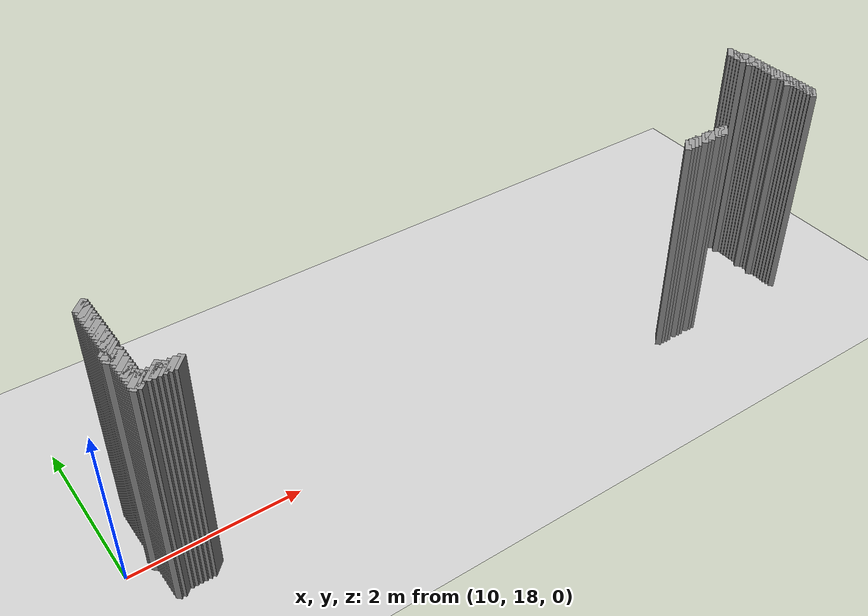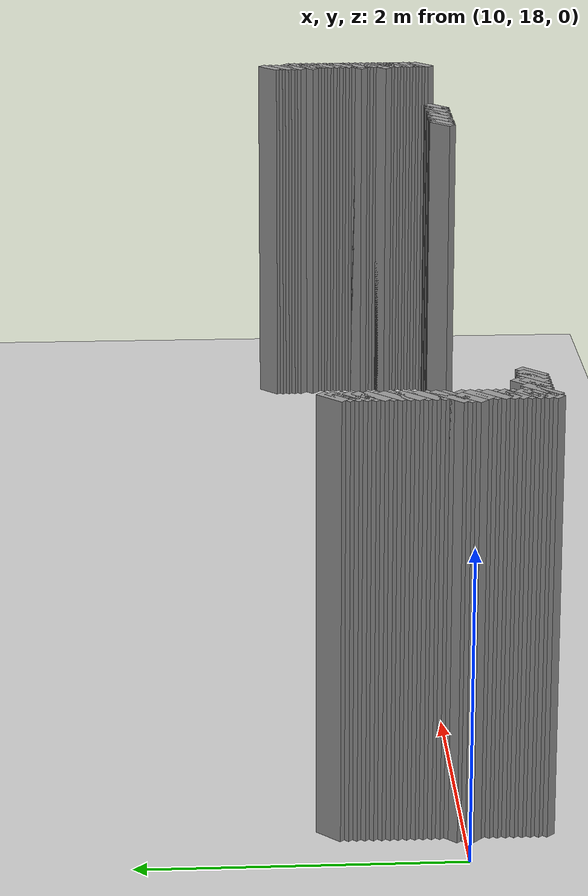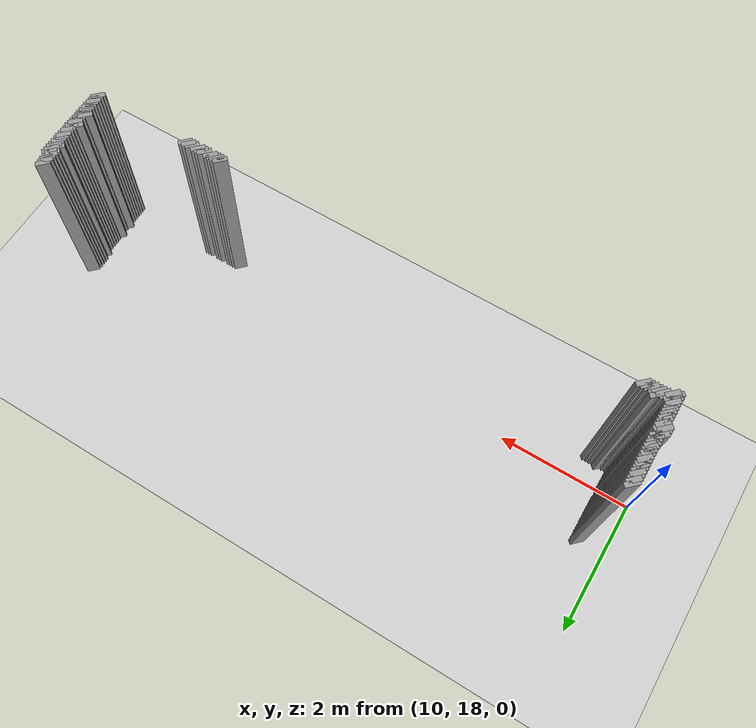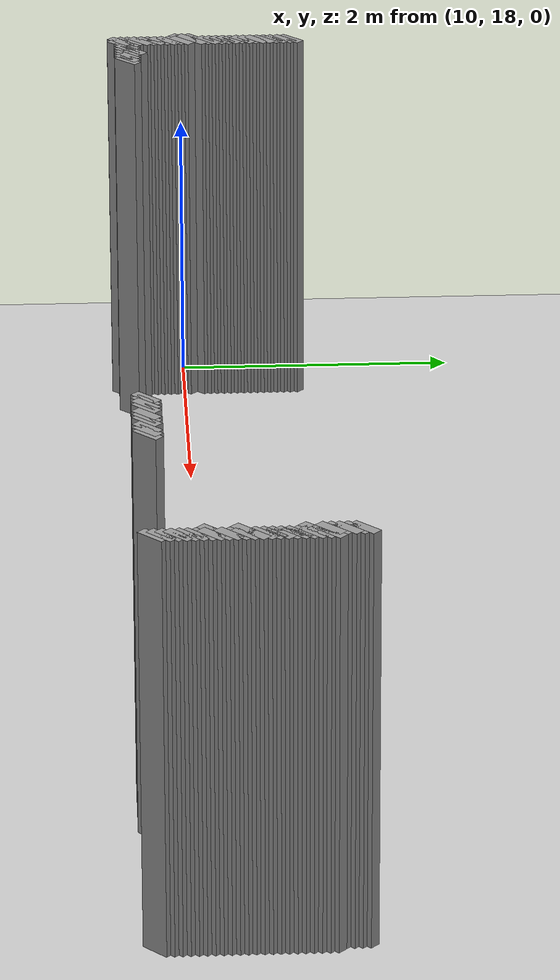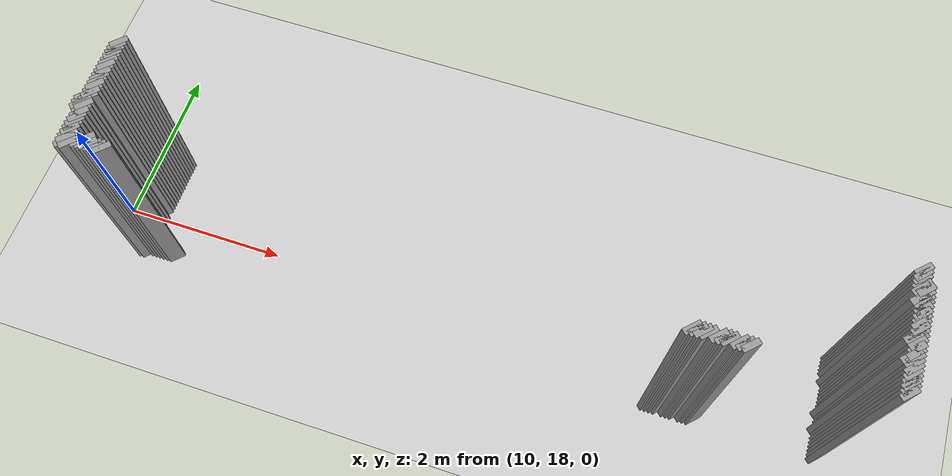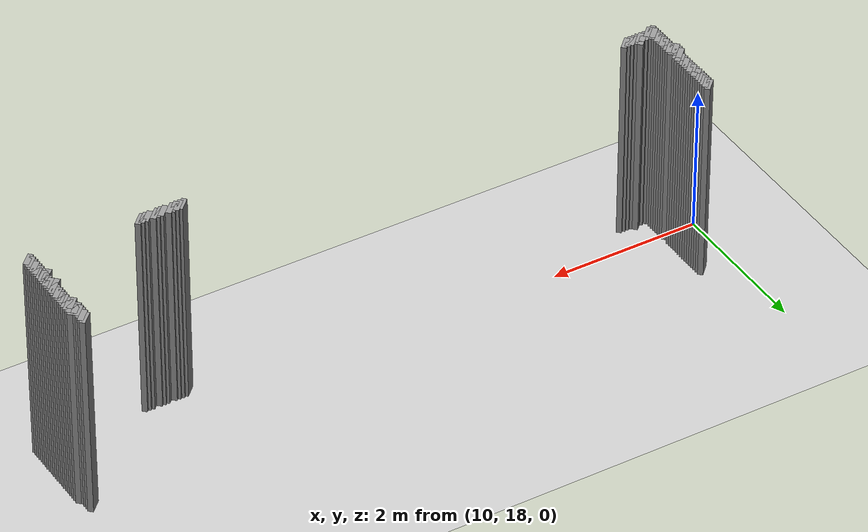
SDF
<sdf version="1.5">
 <world name="default">
  <include><uri>model://ground_plane</uri></include>
  <include><uri>model://sun</uri></include>
  <model name="grey_wall_234">
   <static>1</static>
   <link name="link">
    <pose>18.8 18.85  1.4 0 0 -0.785398163397</pose>
    <collision name="collision"><geometry><box><size>0.0707106781187 .2  2.8</size></box></geometry></collision>
    <visual name="visual">
     <cast_shadows>0</cast_shadows>
     <geometry><box><size>0.0707106781187 .2  2.8</size></box></geometry>
     <material>
      <script>
       <uri>model://grey_wall/materials/scripts</uri>
       <uri>model://grey_wall/materials/textures</uri>
       <name>vrc/grey_wall</name>
      </script>
     </material>
    </visual>
   </link>
  </model>
  <model name="grey_wall_235">
   <static>1</static>
   <link name="link">
    <pose>10.4 18.8  1.4 0 0 -0.785398163397</pose>
    <collision name="collision"><geometry><box><size>0.0707106781187 .2  2.8</size></box></geometry></collision>
    <visual name="visual">
     <cast_shadows>0</cast_shadows>
     <geometry><box><size>0.0707106781187 .2  2.8</size></box></geometry>
     <material>
      <script>
       <uri>model://grey_wall/materials/scripts</uri>
       <uri>model://grey_wall/materials/textures</uri>
       <name>vrc/grey_wall</name>
      </script>
     </material>
    </visual>
   </link>
  </model>
  <model name="grey_wall_236">
   <static>1</static>
   <link name="link">
    <pose>18.8 18.8  1.4 0 0 -0.785398163397</pose>
    <collision name="collision"><geometry><box><size>0.0707106781187 .2  2.8</size></box></geometry></collision>
    <visual name="visual">
     <cast_shadows>0</cast_shadows>
     <geometry><box><size>0.0707106781187 .2  2.8</size></box></geometry>
     <material>
      <script>
       <uri>model://grey_wall/materials/scripts</uri>
       <uri>model://grey_wall/materials/textures</uri>
       <name>vrc/grey_wall</name>
      </script>
     </material>
    </visual>
   </link>
  </model>
  <model name="grey_wall_237">
   <static>1</static>
   <link name="link">
    <pose>10.4 18.75  1.4 0 0 -0.785398163397</pose>
    <collision name="collision"><geometry><box><size>0.0707106781187 .2  2.8</size></box></geometry></collision>
    <visual name="visual">
     <cast_shadows>0</cast_shadows>
     <geometry><box><size>0.0707106781187 .2  2.8</size></box></geometry>
     <material>
      <script>
       <uri>model://grey_wall/materials/scripts</uri>
       <uri>model://grey_wall/materials/textures</uri>
       <name>vrc/grey_wall</name>
      </script>
     </material>
    </visual>
   </link>
  </model>
  <model name="grey_wall_238">
   <static>1</static>
   <link name="link">
    <pose>18.8 18.75  1.4 0 0 -0.785398163397</pose>
    <collision name="collision"><geometry><box><size>0.0707106781187 .2  2.8</size></box></geometry></collision>
    <visual name="visual">
     <cast_shadows>0</cast_shadows>
     <geometry><box><size>0.0707106781187 .2  2.8</size></box></geometry>
     <material>
      <script>
       <uri>model://grey_wall/materials/scripts</uri>
       <uri>model://grey_wall/materials/textures</uri>
       <name>vrc/grey_wall</name>
      </script>
     </material>
    </visual>
   </link>
  </model>
  <model name="grey_wall_239">
   <static>1</static>
   <link name="link">
    <pose>10.4 18.7  1.4 0 0 -0.785398163397</pose>
    <collision name="collision"><geometry><box><size>0.0707106781187 .2  2.8</size></box></geometry></collision>
    <visual name="visual">
     <cast_shadows>0</cast_shadows>
     <geometry><box><size>0.0707106781187 .2  2.8</size></box></geometry>
     <material>
      <script>
       <uri>model://grey_wall/materials/scripts</uri>
       <uri>model://grey_wall/materials/textures</uri>
       <name>vrc/grey_wall</name>
      </script>
     </material>
    </visual>
   </link>
  </model>
  <model name="grey_wall_240">
   <static>1</static>
   <link name="link">
    <pose>18.8 18.7  1.4 0 0 -0.785398163397</pose>
    <collision name="collision"><geometry><box><size>0.0707106781187 .2  2.8</size></box></geometry></collision>
    <visual name="visual">
     <cast_shadows>0</cast_shadows>
     <geometry><box><size>0.0707106781187 .2  2.8</size></box></geometry>
     <material>
      <script>
       <uri>model://grey_wall/materials/scripts</uri>
       <uri>model://grey_wall/materials/textures</uri>
       <name>vrc/grey_wall</name>
      </script>
     </material>
    </visual>
   </link>
  </model>
  <model name="grey_wall_241">
   <static>1</static>
   <link name="link">
    <pose>10.4 18.65  1.4 0 0 -0.785398163397</pose>
    <collision name="collision"><geometry><box><size>0.0707106781187 .2  2.8</size></box></geometry></collision>
    <visual name="visual">
     <cast_shadows>0</cast_shadows>
     <geometry><box><size>0.0707106781187 .2  2.8</size></box></geometry>
     <material>
      <script>
       <uri>model://grey_wall/materials/scripts</uri>
       <uri>model://grey_wall/materials/textures</uri>
       <name>vrc/grey_wall</name>
      </script>
     </material>
    </visual>
   </link>
  </model>
  <model name="grey_wall_242">
   <static>1</static>
   <link name="link">
    <pose>18.8 18.65  1.4 0 0 -0.785398163397</pose>
    <collision name="collision"><geometry><box><size>0.0707106781187 .2  2.8</size></box></geometry></collision>
    <visual name="visual">
     <cast_shadows>0</cast_shadows>
     <geometry><box><size>0.0707106781187 .2  2.8</size></box></geometry>
     <material>
      <script>
       <uri>model://grey_wall/materials/scripts</uri>
       <uri>model://grey_wall/materials/textures</uri>
       <name>vrc/grey_wall</name>
      </script>
     </material>
    </visual>
   </link>
  </model>
  <model name="grey_wall_243">
   <static>1</static>
   <link name="link">
    <pose>18.85 18.65  1.4 0 0 -0.785398163397</pose>
    <collision name="collision"><geometry><box><size>0.0707106781187 .2  2.8</size></box></geometry></collision>
    <visual name="visual">
     <cast_shadows>0</cast_shadows>
     <geometry><box><size>0.0707106781187 .2  2.8</size></box></geometry>
     <material>
      <script>
       <uri>model://grey_wall/materials/scripts</uri>
       <uri>model://grey_wall/materials/textures</uri>
       <name>vrc/grey_wall</name>
      </script>
     </material>
    </visual>
   </link>
  </model>
  <model name="grey_wall_244">
   <static>1</static>
   <link name="link">
    <pose>10.4 18.6  1.4 0 0 -0.785398163397</pose>
    <collision name="collision"><geometry><box><size>0.0707106781187 .2  2.8</size></box></geometry></collision>
    <visual name="visual">
     <cast_shadows>0</cast_shadows>
     <geometry><box><size>0.0707106781187 .2  2.8</size></box></geometry>
     <material>
      <script>
       <uri>model://grey_wall/materials/scripts</uri>
       <uri>model://grey_wall/materials/textures</uri>
       <name>vrc/grey_wall</name>
      </script>
     </material>
    </visual>
   </link>
  </model>
  <model name="grey_wall_245">
   <static>1</static>
   <link name="link">
    <pose>18.85 18.6  1.4 0 0 -0.785398163397</pose>
    <collision name="collision"><geometry><box><size>0.0707106781187 .2  2.8</size></box></geometry></collision>
    <visual name="visual">
     <cast_shadows>0</cast_shadows>
     <geometry><box><size>0.0707106781187 .2  2.8</size></box></geometry>
     <material>
      <script>
       <uri>model://grey_wall/materials/scripts</uri>
       <uri>model://grey_wall/materials/textures</uri>
       <name>vrc/grey_wall</name>
      </script>
     </material>
    </visual>
   </link>
  </model>
  <model name="grey_wall_246">
   <static>1</static>
   <link name="link">
    <pose>10.4 18.55  1.4 0 0 -0.785398163397</pose>
    <collision name="collision"><geometry><box><size>0.0707106781187 .2  2.8</size></box></geometry></collision>
    <visual name="visual">
     <cast_shadows>0</cast_shadows>
     <geometry><box><size>0.0707106781187 .2  2.8</size></box></geometry>
     <material>
      <script>
       <uri>model://grey_wall/materials/scripts</uri>
       <uri>model://grey_wall/materials/textures</uri>
       <name>vrc/grey_wall</name>
      </script>
     </material>
    </visual>
   </link>
  </model>
  <model name="grey_wall_247">
   <static>1</static>
   <link name="link">
    <pose>18.8 18.55  1.4 0 0 -0.785398163397</pose>
    <collision name="collision"><geometry><box><size>0.0707106781187 .2  2.8</size></box></geometry></collision>
    <visual name="visual">
     <cast_shadows>0</cast_shadows>
     <geometry><box><size>0.0707106781187 .2  2.8</size></box></geometry>
     <material>
      <script>
       <uri>model://grey_wall/materials/scripts</uri>
       <uri>model://grey_wall/materials/textures</uri>
       <name>vrc/grey_wall</name>
      </script>
     </material>
    </visual>
   </link>
  </model>
  <model name="grey_wall_248">
   <static>1</static>
   <link name="link">
    <pose>18.85 18.55  1.4 0 0 -0.785398163397</pose>
    <collision name="collision"><geometry><box><size>0.0707106781187 .2  2.8</size></box></geometry></collision>
    <visual name="visual">
     <cast_shadows>0</cast_shadows>
     <geometry><box><size>0.0707106781187 .2  2.8</size></box></geometry>
     <material>
      <script>
       <uri>model://grey_wall/materials/scripts</uri>
       <uri>model://grey_wall/materials/textures</uri>
       <name>vrc/grey_wall</name>
      </script>
     </material>
    </visual>
   </link>
  </model>
  <model name="grey_wall_249">
   <static>1</static>
   <link name="link">
    <pose>10.4 18.5  1.4 0 0 -0.785398163397</pose>
    <collision name="collision"><geometry><box><size>0.0707106781187 .2  2.8</size></box></geometry></collision>
    <visual name="visual">
     <cast_shadows>0</cast_shadows>
     <geometry><box><size>0.0707106781187 .2  2.8</size></box></geometry>
     <material>
      <script>
       <uri>model://grey_wall/materials/scripts</uri>
       <uri>model://grey_wall/materials/textures</uri>
       <name>vrc/grey_wall</name>
      </script>
     </material>
    </visual>
   </link>
  </model>
  <model name="grey_wall_250">
   <static>1</static>
   <link name="link">
    <pose>18.85 18.5  1.4 0 0 -0.785398163397</pose>
    <collision name="collision"><geometry><box><size>0.0707106781187 .2  2.8</size></box></geometry></collision>
    <visual name="visual">
     <cast_shadows>0</cast_shadows>
     <geometry><box><size>0.0707106781187 .2  2.8</size></box></geometry>
     <material>
      <script>
       <uri>model://grey_wall/materials/scripts</uri>
       <uri>model://grey_wall/materials/textures</uri>
       <name>vrc/grey_wall</name>
      </script>
     </material>
    </visual>
   </link>
  </model>
  <model name="grey_wall_251">
   <static>1</static>
   <link name="link">
    <pose>10.4 18.45  1.4 0 0 -0.785398163397</pose>
    <collision name="collision"><geometry><box><size>0.0707106781187 .2  2.8</size></box></geometry></collision>
    <visual name="visual">
     <cast_shadows>0</cast_shadows>
     <geometry><box><size>0.0707106781187 .2  2.8</size></box></geometry>
     <material>
      <script>
       <uri>model://grey_wall/materials/scripts</uri>
       <uri>model://grey_wall/materials/textures</uri>
       <name>vrc/grey_wall</name>
      </script>
     </material>
    </visual>
   </link>
  </model>
  <model name="grey_wall_252">
   <static>1</static>
   <link name="link">
    <pose>18.85 18.45  1.4 0 0 -0.785398163397</pose>
    <collision name="collision"><geometry><box><size>0.0707106781187 .2  2.8</size></box></geometry></collision>
    <visual name="visual">
     <cast_shadows>0</cast_shadows>
     <geometry><box><size>0.0707106781187 .2  2.8</size></box></geometry>
     <material>
      <script>
       <uri>model://grey_wall/materials/scripts</uri>
       <uri>model://grey_wall/materials/textures</uri>
       <name>vrc/grey_wall</name>
      </script>
     </material>
    </visual>
   </link>
  </model>
  <model name="grey_wall_253">
   <static>1</static>
   <link name="link">
    <pose>10.4 18.4  1.4 0 0 -0.785398163397</pose>
    <collision name="collision"><geometry><box><size>0.0707106781187 .2  2.8</size></box></geometry></collision>
    <visual name="visual">
     <cast_shadows>0</cast_shadows>
     <geometry><box><size>0.0707106781187 .2  2.8</size></box></geometry>
     <material>
      <script>
       <uri>model://grey_wall/materials/scripts</uri>
       <uri>model://grey_wall/materials/textures</uri>
       <name>vrc/grey_wall</name>
      </script>
     </material>
    </visual>
   </link>
  </model>
  <model name="grey_wall_254">
   <static>1</static>
   <link name="link">
    <pose>18.85 18.4  1.4 0 0 -0.785398163397</pose>
    <collision name="collision"><geometry><box><size>0.0707106781187 .2  2.8</size></box></geometry></collision>
    <visual name="visual">
     <cast_shadows>0</cast_shadows>
     <geometry><box><size>0.0707106781187 .2  2.8</size></box></geometry>
     <material>
      <script>
       <uri>model://grey_wall/materials/scripts</uri>
       <uri>model://grey_wall/materials/textures</uri>
       <name>vrc/grey_wall</name>
      </script>
     </material>
    </visual>
   </link>
  </model>
  <model name="grey_wall_255">
   <static>1</static>
   <link name="link">
    <pose>10.4 18.35  1.4 0 0 -0.785398163397</pose>
    <collision name="collision"><geometry><box><size>0.0707106781187 .2  2.8</size></box></geometry></collision>
    <visual name="visual">
     <cast_shadows>0</cast_shadows>
     <geometry><box><size>0.0707106781187 .2  2.8</size></box></geometry>
     <material>
      <script>
       <uri>model://grey_wall/materials/scripts</uri>
       <uri>model://grey_wall/materials/textures</uri>
       <name>vrc/grey_wall</name>
      </script>
     </material>
    </visual>
   </link>
  </model>
  <model name="grey_wall_256">
   <static>1</static>
   <link name="link">
    <pose>18.85 18.35  1.4 0 0 -0.785398163397</pose>
    <collision name="collision"><geometry><box><size>0.0707106781187 .2  2.8</size></box></geometry></collision>
    <visual name="visual">
     <cast_shadows>0</cast_shadows>
     <geometry><box><size>0.0707106781187 .2  2.8</size></box></geometry>
     <material>
      <script>
       <uri>model://grey_wall/materials/scripts</uri>
       <uri>model://grey_wall/materials/textures</uri>
       <name>vrc/grey_wall</name>
      </script>
     </material>
    </visual>
   </link>
  </model>
  <model name="grey_wall_257">
   <static>1</static>
   <link name="link">
    <pose>10.4 18.3  1.4 0 0 -0.785398163397</pose>
    <collision name="collision"><geometry><box><size>0.0707106781187 .2  2.8</size></box></geometry></collision>
    <visual name="visual">
     <cast_shadows>0</cast_shadows>
     <geometry><box><size>0.0707106781187 .2  2.8</size></box></geometry>
     <material>
      <script>
       <uri>model://grey_wall/materials/scripts</uri>
       <uri>model://grey_wall/materials/textures</uri>
       <name>vrc/grey_wall</name>
      </script>
     </material>
    </visual>
   </link>
  </model>
  <model name="grey_wall_258">
   <static>1</static>
   <link name="link">
    <pose>18.85 18.3  1.4 0 0 -0.785398163397</pose>
    <collision name="collision"><geometry><box><size>0.0707106781187 .2  2.8</size></box></geometry></collision>
    <visual name="visual">
     <cast_shadows>0</cast_shadows>
     <geometry><box><size>0.0707106781187 .2  2.8</size></box></geometry>
     <material>
      <script>
       <uri>model://grey_wall/materials/scripts</uri>
       <uri>model://grey_wall/materials/textures</uri>
       <name>vrc/grey_wall</name>
      </script>
     </material>
    </visual>
   </link>
  </model>
  <model name="grey_wall_259">
   <static>1</static>
   <link name="link">
    <pose>10.4 18.25  1.4 0 0 -0.785398163397</pose>
    <collision name="collision"><geometry><box><size>0.0707106781187 .2  2.8</size></box></geometry></collision>
    <visual name="visual">
     <cast_shadows>0</cast_shadows>
     <geometry><box><size>0.0707106781187 .2  2.8</size></box></geometry>
     <material>
      <script>
       <uri>model://grey_wall/materials/scripts</uri>
       <uri>model://grey_wall/materials/textures</uri>
       <name>vrc/grey_wall</name>
      </script>
     </material>
    </visual>
   </link>
  </model>
  <model name="grey_wall_260">
   <static>1</static>
   <link name="link">
    <pose>18.85 18.25  1.4 0 0 -0.785398163397</pose>
    <collision name="collision"><geometry><box><size>0.0707106781187 .2  2.8</size></box></geometry></collision>
    <visual name="visual">
     <cast_shadows>0</cast_shadows>
     <geometry><box><size>0.0707106781187 .2  2.8</size></box></geometry>
     <material>
      <script>
       <uri>model://grey_wall/materials/scripts</uri>
       <uri>model://grey_wall/materials/textures</uri>
       <name>vrc/grey_wall</name>
      </script>
     </material>
    </visual>
   </link>
  </model>
  <model name="grey_wall_261">
   <static>1</static>
   <link name="link">
    <pose>10.4 18.2  1.4 0 0 -0.785398163397</pose>
    <collision name="collision"><geometry><box><size>0.0707106781187 .2  2.8</size></box></geometry></collision>
    <visual name="visual">
     <cast_shadows>0</cast_shadows>
     <geometry><box><size>0.0707106781187 .2  2.8</size></box></geometry>
     <material>
      <script>
       <uri>model://grey_wall/materials/scripts</uri>
       <uri>model://grey_wall/materials/textures</uri>
       <name>vrc/grey_wall</name>
      </script>
     </material>
    </visual>
   </link>
  </model>
  <model name="grey_wall_262">
   <static>1</static>
   <link name="link">
    <pose>18.85 18.2  1.4 0 0 -0.785398163397</pose>
    <collision name="collision"><geometry><box><size>0.0707106781187 .2  2.8</size></box></geometry></collision>
    <visual name="visual">
     <cast_shadows>0</cast_shadows>
     <geometry><box><size>0.0707106781187 .2  2.8</size></box></geometry>
     <material>
      <script>
       <uri>model://grey_wall/materials/scripts</uri>
       <uri>model://grey_wall/materials/textures</uri>
       <name>vrc/grey_wall</name>
      </script>
     </material>
    </visual>
   </link>
  </model>
  <model name="grey_wall_263">
   <static>1</static>
   <link name="link">
    <pose>10.4 18.15  1.4 0 0 -0.785398163397</pose>
    <collision name="collision"><geometry><box><size>0.0707106781187 .2  2.8</size></box></geometry></collision>
    <visual name="visual">
     <cast_shadows>0</cast_shadows>
     <geometry><box><size>0.0707106781187 .2  2.8</size></box></geometry>
     <material>
      <script>
       <uri>model://grey_wall/materials/scripts</uri>
       <uri>model://grey_wall/materials/textures</uri>
       <name>vrc/grey_wall</name>
      </script>
     </material>
    </visual>
   </link>
  </model>
  <model name="grey_wall_264">
   <static>1</static>
   <link name="link">
    <pose>18.8 18.15  1.4 0 0 -0.785398163397</pose>
    <collision name="collision"><geometry><box><size>0.0707106781187 .2  2.8</size></box></geometry></collision>
    <visual name="visual">
     <cast_shadows>0</cast_shadows>
     <geometry><box><size>0.0707106781187 .2  2.8</size></box></geometry>
     <material>
      <script>
       <uri>model://grey_wall/materials/scripts</uri>
       <uri>model://grey_wall/materials/textures</uri>
       <name>vrc/grey_wall</name>
      </script>
     </material>
    </visual>
   </link>
  </model>
  <model name="grey_wall_265">
   <static>1</static>
   <link name="link">
    <pose>18.85 18.15  1.4 0 0 -0.785398163397</pose>
    <collision name="collision"><geometry><box><size>0.0707106781187 .2  2.8</size></box></geometry></collision>
    <visual name="visual">
     <cast_shadows>0</cast_shadows>
     <geometry><box><size>0.0707106781187 .2  2.8</size></box></geometry>
     <material>
      <script>
       <uri>model://grey_wall/materials/scripts</uri>
       <uri>model://grey_wall/materials/textures</uri>
       <name>vrc/grey_wall</name>
      </script>
     </material>
    </visual>
   </link>
  </model>
  <model name="grey_wall_266">
   <static>1</static>
   <link name="link">
    <pose>10.35 18.1  1.4 0 0 -0.785398163397</pose>
    <collision name="collision"><geometry><box><size>0.0707106781187 .2  2.8</size></box></geometry></collision>
    <visual name="visual">
     <cast_shadows>0</cast_shadows>
     <geometry><box><size>0.0707106781187 .2  2.8</size></box></geometry>
     <material>
      <script>
       <uri>model://grey_wall/materials/scripts</uri>
       <uri>model://grey_wall/materials/textures</uri>
       <name>vrc/grey_wall</name>
      </script>
     </material>
    </visual>
   </link>
  </model>
  <model name="grey_wall_267">
   <static>1</static>
   <link name="link">
    <pose>10.4 18.1  1.4 0 0 -0.785398163397</pose>
    <collision name="collision"><geometry><box><size>0.0707106781187 .2  2.8</size></box></geometry></collision>
    <visual name="visual">
     <cast_shadows>0</cast_shadows>
     <geometry><box><size>0.0707106781187 .2  2.8</size></box></geometry>
     <material>
      <script>
       <uri>model://grey_wall/materials/scripts</uri>
       <uri>model://grey_wall/materials/textures</uri>
       <name>vrc/grey_wall</name>
      </script>
     </material>
    </visual>
   </link>
  </model>
  <model name="grey_wall_268">
   <static>1</static>
   <link name="link">
    <pose>18.85 18.1  1.4 0 0 -0.785398163397</pose>
    <collision name="collision"><geometry><box><size>0.0707106781187 .2  2.8</size></box></geometry></collision>
    <visual name="visual">
     <cast_shadows>0</cast_shadows>
     <geometry><box><size>0.0707106781187 .2  2.8</size></box></geometry>
     <material>
      <script>
       <uri>model://grey_wall/materials/scripts</uri>
       <uri>model://grey_wall/materials/textures</uri>
       <name>vrc/grey_wall</name>
      </script>
     </material>
    </visual>
   </link>
  </model>
  <model name="grey_wall_269">
   <static>1</static>
   <link name="link">
    <pose>10.35 18.05  1.4 0 0 -0.785398163397</pose>
    <collision name="collision"><geometry><box><size>0.0707106781187 .2  2.8</size></box></geometry></collision>
    <visual name="visual">
     <cast_shadows>0</cast_shadows>
     <geometry><box><size>0.0707106781187 .2  2.8</size></box></geometry>
     <material>
      <script>
       <uri>model://grey_wall/materials/scripts</uri>
       <uri>model://grey_wall/materials/textures</uri>
       <name>vrc/grey_wall</name>
      </script>
     </material>
    </visual>
   </link>
  </model>
  <model name="grey_wall_270">
   <static>1</static>
   <link name="link">
    <pose>18.85 18.05  1.4 0 0 -0.785398163397</pose>
    <collision name="collision"><geometry><box><size>0.0707106781187 .2  2.8</size></box></geometry></collision>
    <visual name="visual">
     <cast_shadows>0</cast_shadows>
     <geometry><box><size>0.0707106781187 .2  2.8</size></box></geometry>
     <material>
      <script>
       <uri>model://grey_wall/materials/scripts</uri>
       <uri>model://grey_wall/materials/textures</uri>
       <name>vrc/grey_wall</name>
      </script>
     </material>
    </visual>
   </link>
  </model>
  <model name="grey_wall_271">
   <static>1</static>
   <link name="link">
    <pose>10.35 18.0  1.4 0 0 -0.785398163397</pose>
    <collision name="collision"><geometry><box><size>0.0707106781187 .2  2.8</size></box></geometry></collision>
    <visual name="visual">
     <cast_shadows>0</cast_shadows>
     <geometry><box><size>0.0707106781187 .2  2.8</size></box></geometry>
     <material>
      <script>
       <uri>model://grey_wall/materials/scripts</uri>
       <uri>model://grey_wall/materials/textures</uri>
       <name>vrc/grey_wall</name>
      </script>
     </material>
    </visual>
   </link>
  </model>
  <model name="grey_wall_272">
   <static>1</static>
   <link name="link">
    <pose>10.4 18.0  1.4 0 0 -0.785398163397</pose>
    <collision name="collision"><geometry><box><size>0.0707106781187 .2  2.8</size></box></geometry></collision>
    <visual name="visual">
     <cast_shadows>0</cast_shadows>
     <geometry><box><size>0.0707106781187 .2  2.8</size></box></geometry>
     <material>
      <script>
       <uri>model://grey_wall/materials/scripts</uri>
       <uri>model://grey_wall/materials/textures</uri>
       <name>vrc/grey_wall</name>
      </script>
     </material>
    </visual>
   </link>
  </model>
  <model name="grey_wall_273">
   <static>1</static>
   <link name="link">
    <pose>18.85 18.0  1.4 0 0 -0.785398163397</pose>
    <collision name="collision"><geometry><box><size>0.0707106781187 .2  2.8</size></box></geometry></collision>
    <visual name="visual">
     <cast_shadows>0</cast_shadows>
     <geometry><box><size>0.0707106781187 .2  2.8</size></box></geometry>
     <material>
      <script>
       <uri>model://grey_wall/materials/scripts</uri>
       <uri>model://grey_wall/materials/textures</uri>
       <name>vrc/grey_wall</name>
      </script>
     </material>
    </visual>
   </link>
  </model>
  <model name="grey_wall_274">
   <static>1</static>
   <link name="link">
    <pose>10.4 17.95  1.4 0 0 -0.785398163397</pose>
    <collision name="collision"><geometry><box><size>0.0707106781187 .2  2.8</size></box></geometry></collision>
    <visual name="visual">
     <cast_shadows>0</cast_shadows>
     <geometry><box><size>0.0707106781187 .2  2.8</size></box></geometry>
     <material>
      <script>
       <uri>model://grey_wall/materials/scripts</uri>
       <uri>model://grey_wall/materials/textures</uri>
       <name>vrc/grey_wall</name>
      </script>
     </material>
    </visual>
   </link>
  </model>
  <model name="grey_wall_275">
   <static>1</static>
   <link name="link">
    <pose>18.8 17.95  1.4 0 0 -0.785398163397</pose>
    <collision name="collision"><geometry><box><size>0.0707106781187 .2  2.8</size></box></geometry></collision>
    <visual name="visual">
     <cast_shadows>0</cast_shadows>
     <geometry><box><size>0.0707106781187 .2  2.8</size></box></geometry>
     <material>
      <script>
       <uri>model://grey_wall/materials/scripts</uri>
       <uri>model://grey_wall/materials/textures</uri>
       <name>vrc/grey_wall</name>
      </script>
     </material>
    </visual>
   </link>
  </model>
  <model name="grey_wall_276">
   <static>1</static>
   <link name="link">
    <pose>18.85 17.95  1.4 0 0 -0.785398163397</pose>
    <collision name="collision"><geometry><box><size>0.0707106781187 .2  2.8</size></box></geometry></collision>
    <visual name="visual">
     <cast_shadows>0</cast_shadows>
     <geometry><box><size>0.0707106781187 .2  2.8</size></box></geometry>
     <material>
      <script>
       <uri>model://grey_wall/materials/scripts</uri>
       <uri>model://grey_wall/materials/textures</uri>
       <name>vrc/grey_wall</name>
      </script>
     </material>
    </visual>
   </link>
  </model>
  <model name="grey_wall_277">
   <static>1</static>
   <link name="link">
    <pose>10.4 17.9  1.4 0 0 -0.785398163397</pose>
    <collision name="collision"><geometry><box><size>0.0707106781187 .2  2.8</size></box></geometry></collision>
    <visual name="visual">
     <cast_shadows>0</cast_shadows>
     <geometry><box><size>0.0707106781187 .2  2.8</size></box></geometry>
     <material>
      <script>
       <uri>model://grey_wall/materials/scripts</uri>
       <uri>model://grey_wall/materials/textures</uri>
       <name>vrc/grey_wall</name>
      </script>
     </material>
    </visual>
   </link>
  </model>
  <model name="grey_wall_278">
   <static>1</static>
   <link name="link">
    <pose>18.85 17.9  1.4 0 0 -0.785398163397</pose>
    <collision name="collision"><geometry><box><size>0.0707106781187 .2  2.8</size></box></geometry></collision>
    <visual name="visual">
     <cast_shadows>0</cast_shadows>
     <geometry><box><size>0.0707106781187 .2  2.8</size></box></geometry>
     <material>
      <script>
       <uri>model://grey_wall/materials/scripts</uri>
       <uri>model://grey_wall/materials/textures</uri>
       <name>vrc/grey_wall</name>
      </script>
     </material>
    </visual>
   </link>
  </model>
  <model name="grey_wall_279">
   <static>1</static>
   <link name="link">
    <pose>10.4 17.85  1.4 0 0 -0.785398163397</pose>
    <collision name="collision"><geometry><box><size>0.0707106781187 .2  2.8</size></box></geometry></collision>
    <visual name="visual">
     <cast_shadows>0</cast_shadows>
     <geometry><box><size>0.0707106781187 .2  2.8</size></box></geometry>
     <material>
      <script>
       <uri>model://grey_wall/materials/scripts</uri>
       <uri>model://grey_wall/materials/textures</uri>
       <name>vrc/grey_wall</name>
      </script>
     </material>
    </visual>
   </link>
  </model>
  <model name="grey_wall_280">
   <static>1</static>
   <link name="link">
    <pose>18.85 17.85  1.4 0 0 -0.785398163397</pose>
    <collision name="collision"><geometry><box><size>0.0707106781187 .2  2.8</size></box></geometry></collision>
    <visual name="visual">
     <cast_shadows>0</cast_shadows>
     <geometry><box><size>0.0707106781187 .2  2.8</size></box></geometry>
     <material>
      <script>
       <uri>model://grey_wall/materials/scripts</uri>
       <uri>model://grey_wall/materials/textures</uri>
       <name>vrc/grey_wall</name>
      </script>
     </material>
    </visual>
   </link>
  </model>
  <model name="grey_wall_281">
   <static>1</static>
   <link name="link">
    <pose>10.4 17.8  1.4 0 0 -0.785398163397</pose>
    <collision name="collision"><geometry><box><size>0.0707106781187 .2  2.8</size></box></geometry></collision>
    <visual name="visual">
     <cast_shadows>0</cast_shadows>
     <geometry><box><size>0.0707106781187 .2  2.8</size></box></geometry>
     <material>
      <script>
       <uri>model://grey_wall/materials/scripts</uri>
       <uri>model://grey_wall/materials/textures</uri>
       <name>vrc/grey_wall</name>
      </script>
     </material>
    </visual>
   </link>
  </model>
  <model name="grey_wall_282">
   <static>1</static>
   <link name="link">
    <pose>18.85 17.8  1.4 0 0 -0.785398163397</pose>
    <collision name="collision"><geometry><box><size>0.0707106781187 .2  2.8</size></box></geometry></collision>
    <visual name="visual">
     <cast_shadows>0</cast_shadows>
     <geometry><box><size>0.0707106781187 .2  2.8</size></box></geometry>
     <material>
      <script>
       <uri>model://grey_wall/materials/scripts</uri>
       <uri>model://grey_wall/materials/textures</uri>
       <name>vrc/grey_wall</name>
      </script>
     </material>
    </visual>
   </link>
  </model>
  <model name="grey_wall_283">
   <static>1</static>
   <link name="link">
    <pose>10.4 17.75  1.4 0 0 -0.785398163397</pose>
    <collision name="collision"><geometry><box><size>0.0707106781187 .2  2.8</size></box></geometry></collision>
    <visual name="visual">
     <cast_shadows>0</cast_shadows>
     <geometry><box><size>0.0707106781187 .2  2.8</size></box></geometry>
     <material>
      <script>
       <uri>model://grey_wall/materials/scripts</uri>
       <uri>model://grey_wall/materials/textures</uri>
       <name>vrc/grey_wall</name>
      </script>
     </material>
    </visual>
   </link>
  </model>
  <model name="grey_wall_284">
   <static>1</static>
   <link name="link">
    <pose>18.85 17.75  1.4 0 0 -0.785398163397</pose>
    <collision name="collision"><geometry><box><size>0.0707106781187 .2  2.8</size></box></geometry></collision>
    <visual name="visual">
     <cast_shadows>0</cast_shadows>
     <geometry><box><size>0.0707106781187 .2  2.8</size></box></geometry>
     <material>
      <script>
       <uri>model://grey_wall/materials/scripts</uri>
       <uri>model://grey_wall/materials/textures</uri>
       <name>vrc/grey_wall</name>
      </script>
     </material>
    </visual>
   </link>
  </model>
  <model name="grey_wall_285">
   <static>1</static>
   <link name="link">
    <pose>10.4 17.7  1.4 0 0 -0.785398163397</pose>
    <collision name="collision"><geometry><box><size>0.0707106781187 .2  2.8</size></box></geometry></collision>
    <visual name="visual">
     <cast_shadows>0</cast_shadows>
     <geometry><box><size>0.0707106781187 .2  2.8</size></box></geometry>
     <material>
      <script>
       <uri>model://grey_wall/materials/scripts</uri>
       <uri>model://grey_wall/materials/textures</uri>
       <name>vrc/grey_wall</name>
      </script>
     </material>
    </visual>
   </link>
  </model>
  <model name="grey_wall_286">
   <static>1</static>
   <link name="link">
    <pose>18.85 17.7  1.4 0 0 -0.785398163397</pose>
    <collision name="collision"><geometry><box><size>0.0707106781187 .2  2.8</size></box></geometry></collision>
    <visual name="visual">
     <cast_shadows>0</cast_shadows>
     <geometry><box><size>0.0707106781187 .2  2.8</size></box></geometry>
     <material>
      <script>
       <uri>model://grey_wall/materials/scripts</uri>
       <uri>model://grey_wall/materials/textures</uri>
       <name>vrc/grey_wall</name>
      </script>
     </material>
    </visual>
   </link>
  </model>
  <model name="grey_wall_287">
   <static>1</static>
   <link name="link">
    <pose>10.4 17.65  1.4 0 0 -0.785398163397</pose>
    <collision name="collision"><geometry><box><size>0.0707106781187 .2  2.8</size></box></geometry></collision>
    <visual name="visual">
     <cast_shadows>0</cast_shadows>
     <geometry><box><size>0.0707106781187 .2  2.8</size></box></geometry>
     <material>
      <script>
       <uri>model://grey_wall/materials/scripts</uri>
       <uri>model://grey_wall/materials/textures</uri>
       <name>vrc/grey_wall</name>
      </script>
     </material>
    </visual>
   </link>
  </model>
  <model name="grey_wall_288">
   <static>1</static>
   <link name="link">
    <pose>10.6 17.65  1.4 0 0 -0.785398163397</pose>
    <collision name="collision"><geometry><box><size>0.0707106781187 .2  2.8</size></box></geometry></collision>
    <visual name="visual">
     <cast_shadows>0</cast_shadows>
     <geometry><box><size>0.0707106781187 .2  2.8</size></box></geometry>
     <material>
      <script>
       <uri>model://grey_wall/materials/scripts</uri>
       <uri>model://grey_wall/materials/textures</uri>
       <name>vrc/grey_wall</name>
      </script>
     </material>
    </visual>
   </link>
  </model>
  <model name="grey_wall_289">
   <static>1</static>
   <link name="link">
    <pose>18.85 17.65  1.4 0 0 -0.785398163397</pose>
    <collision name="collision"><geometry><box><size>0.0707106781187 .2  2.8</size></box></geometry></collision>
    <visual name="visual">
     <cast_shadows>0</cast_shadows>
     <geometry><box><size>0.0707106781187 .2  2.8</size></box></geometry>
     <material>
      <script>
       <uri>model://grey_wall/materials/scripts</uri>
       <uri>model://grey_wall/materials/textures</uri>
       <name>vrc/grey_wall</name>
      </script>
     </material>
    </visual>
   </link>
  </model>
  <model name="grey_wall_290">
   <static>1</static>
   <link name="link">
    <pose>10.4 17.6  1.4 0 0 -0.785398163397</pose>
    <collision name="collision"><geometry><box><size>0.0707106781187 .2  2.8</size></box></geometry></collision>
    <visual name="visual">
     <cast_shadows>0</cast_shadows>
     <geometry><box><size>0.0707106781187 .2  2.8</size></box></geometry>
     <material>
      <script>
       <uri>model://grey_wall/materials/scripts</uri>
       <uri>model://grey_wall/materials/textures</uri>
       <name>vrc/grey_wall</name>
      </script>
     </material>
    </visual>
   </link>
  </model>
  <model name="grey_wall_291">
   <static>1</static>
   <link name="link">
    <pose>10.45 17.6  1.4 0 0 -0.785398163397</pose>
    <collision name="collision"><geometry><box><size>0.0707106781187 .2  2.8</size></box></geometry></collision>
    <visual name="visual">
     <cast_shadows>0</cast_shadows>
     <geometry><box><size>0.0707106781187 .2  2.8</size></box></geometry>
     <material>
      <script>
       <uri>model://grey_wall/materials/scripts</uri>
       <uri>model://grey_wall/materials/textures</uri>
       <name>vrc/grey_wall</name>
      </script>
     </material>
    </visual>
   </link>
  </model>
  <model name="grey_wall_292">
   <static>1</static>
   <link name="link">
    <pose>10.5 17.6  1.4 0 0 -0.785398163397</pose>
    <collision name="collision"><geometry><box><size>0.0707106781187 .2  2.8</size></box></geometry></collision>
    <visual name="visual">
     <cast_shadows>0</cast_shadows>
     <geometry><box><size>0.0707106781187 .2  2.8</size></box></geometry>
     <material>
      <script>
       <uri>model://grey_wall/materials/scripts</uri>
       <uri>model://grey_wall/materials/textures</uri>
       <name>vrc/grey_wall</name>
      </script>
     </material>
    </visual>
   </link>
  </model>
  <model name="grey_wall_293">
   <static>1</static>
   <link name="link">
    <pose>10.55 17.6  1.4 0 0 -0.785398163397</pose>
    <collision name="collision"><geometry><box><size>0.0707106781187 .2  2.8</size></box></geometry></collision>
    <visual name="visual">
     <cast_shadows>0</cast_shadows>
     <geometry><box><size>0.0707106781187 .2  2.8</size></box></geometry>
     <material>
      <script>
       <uri>model://grey_wall/materials/scripts</uri>
       <uri>model://grey_wall/materials/textures</uri>
       <name>vrc/grey_wall</name>
      </script>
     </material>
    </visual>
   </link>
  </model>
  <model name="grey_wall_294">
   <static>1</static>
   <link name="link">
    <pose>10.6 17.6  1.4 0 0 -0.785398163397</pose>
    <collision name="collision"><geometry><box><size>0.0707106781187 .2  2.8</size></box></geometry></collision>
    <visual name="visual">
     <cast_shadows>0</cast_shadows>
     <geometry><box><size>0.0707106781187 .2  2.8</size></box></geometry>
     <material>
      <script>
       <uri>model://grey_wall/materials/scripts</uri>
       <uri>model://grey_wall/materials/textures</uri>
       <name>vrc/grey_wall</name>
      </script>
     </material>
    </visual>
   </link>
  </model>
  <model name="grey_wall_295">
   <static>1</static>
   <link name="link">
    <pose>10.65 17.6  1.4 0 0 -0.785398163397</pose>
    <collision name="collision"><geometry><box><size>0.0707106781187 .2  2.8</size></box></geometry></collision>
    <visual name="visual">
     <cast_shadows>0</cast_shadows>
     <geometry><box><size>0.0707106781187 .2  2.8</size></box></geometry>
     <material>
      <script>
       <uri>model://grey_wall/materials/scripts</uri>
       <uri>model://grey_wall/materials/textures</uri>
       <name>vrc/grey_wall</name>
      </script>
     </material>
    </visual>
   </link>
  </model>
  <model name="grey_wall_296">
   <static>1</static>
   <link name="link">
    <pose>10.7 17.6  1.4 0 0 -0.785398163397</pose>
    <collision name="collision"><geometry><box><size>0.0707106781187 .2  2.8</size></box></geometry></collision>
    <visual name="visual">
     <cast_shadows>0</cast_shadows>
     <geometry><box><size>0.0707106781187 .2  2.8</size></box></geometry>
     <material>
      <script>
       <uri>model://grey_wall/materials/scripts</uri>
       <uri>model://grey_wall/materials/textures</uri>
       <name>vrc/grey_wall</name>
      </script>
     </material>
    </visual>
   </link>
  </model>
  <model name="grey_wall_297">
   <static>1</static>
   <link name="link">
    <pose>10.75 17.6  1.4 0 0 -0.785398163397</pose>
    <collision name="collision"><geometry><box><size>0.0707106781187 .2  2.8</size></box></geometry></collision>
    <visual name="visual">
     <cast_shadows>0</cast_shadows>
     <geometry><box><size>0.0707106781187 .2  2.8</size></box></geometry>
     <material>
      <script>
       <uri>model://grey_wall/materials/scripts</uri>
       <uri>model://grey_wall/materials/textures</uri>
       <name>vrc/grey_wall</name>
      </script>
     </material>
    </visual>
   </link>
  </model>
  <model name="grey_wall_298">
   <static>1</static>
   <link name="link">
    <pose>10.8 17.6  1.4 0 0 -0.785398163397</pose>
    <collision name="collision"><geometry><box><size>0.0707106781187 .2  2.8</size></box></geometry></collision>
    <visual name="visual">
     <cast_shadows>0</cast_shadows>
     <geometry><box><size>0.0707106781187 .2  2.8</size></box></geometry>
     <material>
      <script>
       <uri>model://grey_wall/materials/scripts</uri>
       <uri>model://grey_wall/materials/textures</uri>
       <name>vrc/grey_wall</name>
      </script>
     </material>
    </visual>
   </link>
  </model>
  <model name="grey_wall_299">
   <static>1</static>
   <link name="link">
    <pose>16.85 17.6  1.4 0 0 -0.785398163397</pose>
    <collision name="collision"><geometry><box><size>0.0707106781187 .2  2.8</size></box></geometry></collision>
    <visual name="visual">
     <cast_shadows>0</cast_shadows>
     <geometry><box><size>0.0707106781187 .2  2.8</size></box></geometry>
     <material>
      <script>
       <uri>model://grey_wall/materials/scripts</uri>
       <uri>model://grey_wall/materials/textures</uri>
       <name>vrc/grey_wall</name>
      </script>
     </material>
    </visual>
   </link>
  </model>
  <model name="grey_wall_300">
   <static>1</static>
   <link name="link">
    <pose>16.9 17.6  1.4 0 0 -0.785398163397</pose>
    <collision name="collision"><geometry><box><size>0.0707106781187 .2  2.8</size></box></geometry></collision>
    <visual name="visual">
     <cast_shadows>0</cast_shadows>
     <geometry><box><size>0.0707106781187 .2  2.8</size></box></geometry>
     <material>
      <script>
       <uri>model://grey_wall/materials/scripts</uri>
       <uri>model://grey_wall/materials/textures</uri>
       <name>vrc/grey_wall</name>
      </script>
     </material>
    </visual>
   </link>
  </model>
  <model name="grey_wall_301">
   <static>1</static>
   <link name="link">
    <pose>16.95 17.6  1.4 0 0 -0.785398163397</pose>
    <collision name="collision"><geometry><box><size>0.0707106781187 .2  2.8</size></box></geometry></collision>
    <visual name="visual">
     <cast_shadows>0</cast_shadows>
     <geometry><box><size>0.0707106781187 .2  2.8</size></box></geometry>
     <material>
      <script>
       <uri>model://grey_wall/materials/scripts</uri>
       <uri>model://grey_wall/materials/textures</uri>
       <name>vrc/grey_wall</name>
      </script>
     </material>
    </visual>
   </link>
  </model>
  <model name="grey_wall_302">
   <static>1</static>
   <link name="link">
    <pose>17.0 17.6  1.4 0 0 -0.785398163397</pose>
    <collision name="collision"><geometry><box><size>0.0707106781187 .2  2.8</size></box></geometry></collision>
    <visual name="visual">
     <cast_shadows>0</cast_shadows>
     <geometry><box><size>0.0707106781187 .2  2.8</size></box></geometry>
     <material>
      <script>
       <uri>model://grey_wall/materials/scripts</uri>
       <uri>model://grey_wall/materials/textures</uri>
       <name>vrc/grey_wall</name>
      </script>
     </material>
    </visual>
   </link>
  </model>
  <model name="grey_wall_303">
   <static>1</static>
   <link name="link">
    <pose>17.1 17.6  1.4 0 0 -0.785398163397</pose>
    <collision name="collision"><geometry><box><size>0.0707106781187 .2  2.8</size></box></geometry></collision>
    <visual name="visual">
     <cast_shadows>0</cast_shadows>
     <geometry><box><size>0.0707106781187 .2  2.8</size></box></geometry>
     <material>
      <script>
       <uri>model://grey_wall/materials/scripts</uri>
       <uri>model://grey_wall/materials/textures</uri>
       <name>vrc/grey_wall</name>
      </script>
     </material>
    </visual>
   </link>
  </model>
  <model name="grey_wall_304">
   <static>1</static>
   <link name="link">
    <pose>17.15 17.6  1.4 0 0 -0.785398163397</pose>
    <collision name="collision"><geometry><box><size>0.0707106781187 .2  2.8</size></box></geometry></collision>
    <visual name="visual">
     <cast_shadows>0</cast_shadows>
     <geometry><box><size>0.0707106781187 .2  2.8</size></box></geometry>
     <material>
      <script>
       <uri>model://grey_wall/materials/scripts</uri>
       <uri>model://grey_wall/materials/textures</uri>
       <name>vrc/grey_wall</name>
      </script>
     </material>
    </visual>
   </link>
  </model>
  <model name="grey_wall_305">
   <static>1</static>
   <link name="link">
    <pose>17.2 17.6  1.4 0 0 -0.785398163397</pose>
    <collision name="collision"><geometry><box><size>0.0707106781187 .2  2.8</size></box></geometry></collision>
    <visual name="visual">
     <cast_shadows>0</cast_shadows>
     <geometry><box><size>0.0707106781187 .2  2.8</size></box></geometry>
     <material>
      <script>
       <uri>model://grey_wall/materials/scripts</uri>
       <uri>model://grey_wall/materials/textures</uri>
       <name>vrc/grey_wall</name>
      </script>
     </material>
    </visual>
   </link>
  </model>
  <model name="grey_wall_306">
   <static>1</static>
   <link name="link">
    <pose>17.3 17.6  1.4 0 0 -0.785398163397</pose>
    <collision name="collision"><geometry><box><size>0.0707106781187 .2  2.8</size></box></geometry></collision>
    <visual name="visual">
     <cast_shadows>0</cast_shadows>
     <geometry><box><size>0.0707106781187 .2  2.8</size></box></geometry>
     <material>
      <script>
       <uri>model://grey_wall/materials/scripts</uri>
       <uri>model://grey_wall/materials/textures</uri>
       <name>vrc/grey_wall</name>
      </script>
     </material>
    </visual>
   </link>
  </model>
  <model name="grey_wall_307">
   <static>1</static>
   <link name="link">
    <pose>17.35 17.6  1.4 0 0 -0.785398163397</pose>
    <collision name="collision"><geometry><box><size>0.0707106781187 .2  2.8</size></box></geometry></collision>
    <visual name="visual">
     <cast_shadows>0</cast_shadows>
     <geometry><box><size>0.0707106781187 .2  2.8</size></box></geometry>
     <material>
      <script>
       <uri>model://grey_wall/materials/scripts</uri>
       <uri>model://grey_wall/materials/textures</uri>
       <name>vrc/grey_wall</name>
      </script>
     </material>
    </visual>
   </link>
  </model>
  <model name="grey_wall_308">
   <static>1</static>
   <link name="link">
    <pose>17.4 17.6  1.4 0 0 -0.785398163397</pose>
    <collision name="collision"><geometry><box><size>0.0707106781187 .2  2.8</size></box></geometry></collision>
    <visual name="visual">
     <cast_shadows>0</cast_shadows>
     <geometry><box><size>0.0707106781187 .2  2.8</size></box></geometry>
     <material>
      <script>
       <uri>model://grey_wall/materials/scripts</uri>
       <uri>model://grey_wall/materials/textures</uri>
       <name>vrc/grey_wall</name>
      </script>
     </material>
    </visual>
   </link>
  </model>
  <model name="grey_wall_309">
   <static>1</static>
   <link name="link">
    <pose>18.85 17.6  1.4 0 0 -0.785398163397</pose>
    <collision name="collision"><geometry><box><size>0.0707106781187 .2  2.8</size></box></geometry></collision>
    <visual name="visual">
     <cast_shadows>0</cast_shadows>
     <geometry><box><size>0.0707106781187 .2  2.8</size></box></geometry>
     <material>
      <script>
       <uri>model://grey_wall/materials/scripts</uri>
       <uri>model://grey_wall/materials/textures</uri>
       <name>vrc/grey_wall</name>
      </script>
     </material>
    </visual>
   </link>
  </model>
  <model name="grey_wall_310">
   <static>1</static>
   <link name="link">
    <pose>10.4 17.55  1.4 0 0 -0.785398163397</pose>
    <collision name="collision"><geometry><box><size>0.0707106781187 .2  2.8</size></box></geometry></collision>
    <visual name="visual">
     <cast_shadows>0</cast_shadows>
     <geometry><box><size>0.0707106781187 .2  2.8</size></box></geometry>
     <material>
      <script>
       <uri>model://grey_wall/materials/scripts</uri>
       <uri>model://grey_wall/materials/textures</uri>
       <name>vrc/grey_wall</name>
      </script>
     </material>
    </visual>
   </link>
  </model>
  <model name="grey_wall_311">
   <static>1</static>
   <link name="link">
    <pose>10.45 17.55  1.4 0 0 -0.785398163397</pose>
    <collision name="collision"><geometry><box><size>0.0707106781187 .2  2.8</size></box></geometry></collision>
    <visual name="visual">
     <cast_shadows>0</cast_shadows>
     <geometry><box><size>0.0707106781187 .2  2.8</size></box></geometry>
     <material>
      <script>
       <uri>model://grey_wall/materials/scripts</uri>
       <uri>model://grey_wall/materials/textures</uri>
       <name>vrc/grey_wall</name>
      </script>
     </material>
    </visual>
   </link>
  </model>
 </world>
</sdf>
